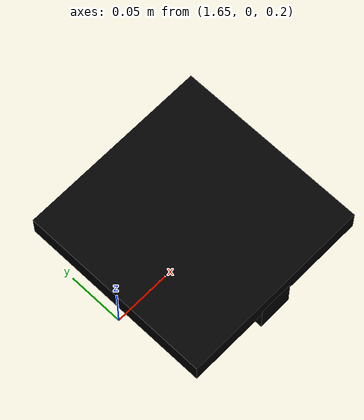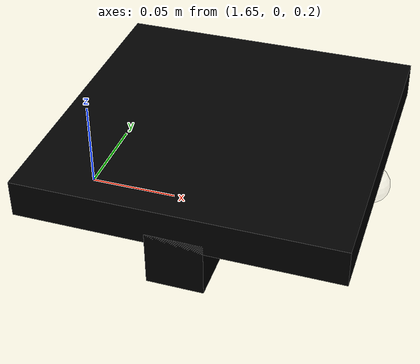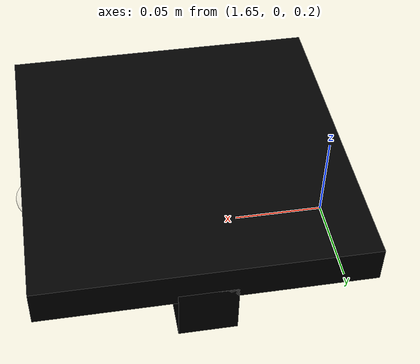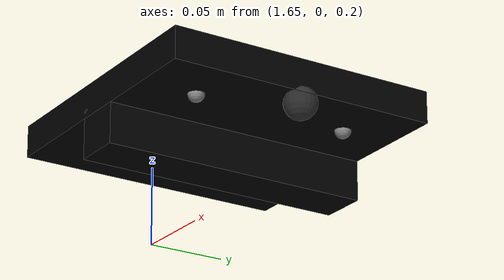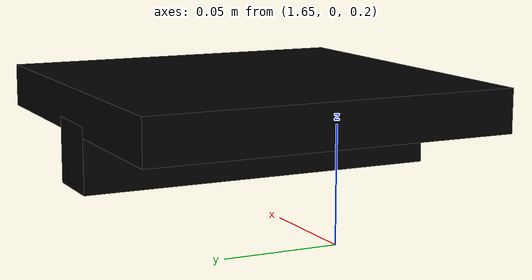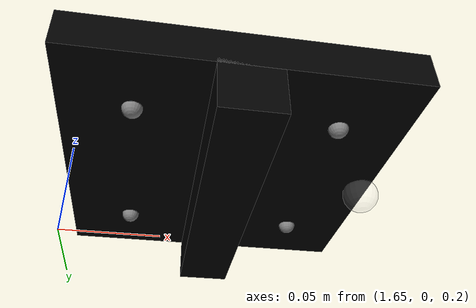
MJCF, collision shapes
<mujoco model="mini-drone-a-0">
  <!-- Compiler settings to automatically compute inertia from geometry and set mujoco_models directory -->
  <compiler inertiafromgeom="true" assetdir="../assets"/>

  <!-- Simulation options including timestep, gravity, solver iterations, integration method, air density, and air viscosity -->
  <option gravity="0 0 -9.81" iterations="50" integrator="Euler" density="1.225" viscosity="1.8e-5"/>

  <!-- Asset definitions for drone components -->
  <asset>
    <!-- Mesh for the drone body -->
    <mesh name="frame_0" file="frame.stl"/>
    <!-- Mesh for clockwise rotating propellers -->
    <mesh name="cwprop_0" file="cwprop.stl"/>
    <!-- Mesh for counter-clockwise rotating propellers -->
    <mesh name="ccwprop_0" file="ccwprop.stl"/>
  </asset>

  <!-- Default properties for joints, geometries, and motors -->
  <default>
    <!-- Joint properties: low damping to allow free rotation -->
    <joint damping="0.01"/>
    <!-- Geometric properties: friction, density, and collision margin -->
    <geom friction="1 0.5 0.5" density="1000" margin="0.01"/>
    <!-- Motor properties: control range -->
    <motor ctrlrange="0.0 1.0"/>
  </default>

  <worldbody>
    <body name="drone_0" pos="1.7320508075688774 0.0 .25">
      <!-- Free joint for models body to allow free movement in the environment -->
      <freejoint name="drone_0_free_joint"/>
      <inertial pos="0 0 0" mass="0.1"/>
      <site name="drone_0_sensor_site" pos="0 0 0"/>
      <geom name="drone_0_mesh" type="mesh" rgba="0.615686 0.811765 0.929412 1" mesh="frame_0" contype="0" conaffinity="0"/>

      <!-- Main collision box for the drone -->
      <geom name="drone_0_collision_1" type="box" size="0.085 0.085 0.01" rgba="0 0 0 0.2" contype="1" conaffinity="1"/>
      <!-- Additional collision box for the drone -->
      <geom name="drone_0_collision_2" type="box" pos="0 0 -0.02" size="0.015 0.085 0.015" rgba="0 0 0 0.2" contype="1" conaffinity="1"/>

      <!-- Propeller bodies and their visuals -->
      <!-- Clockwise rotating propellers -->
      <body name="front_right_prop_0" pos="0.05 -0.05 0">
        <inertial pos="0 0 -0.00580526" quat="0.5 0.5 -0.5 0.5" mass="0.01"/>
        <site name="front_right_prop_0" pos="0 0 -0.01"/>
        <joint name="front_right_prop_0" pos="0 0 0" axis="0 0 1" limited="false"/>
        <geom name="front_right_prop_0" pos="0 0 -0.005" type="mesh" rgba="0.615686 0.811765 0.929412 1" mesh="cwprop_0"/>
      </body>
      <body name="back_left_prop_0" pos="-0.05 0.05 0">
        <inertial pos="0 0 -0.00580526" quat="0.5 0.5 -0.5 0.5" mass="0.01"/>
        <site name="back_left_prop_0" pos="0 0 -0.01"/>
        <joint name="back_left_prop_0" pos="0 0 0" axis="0 0 1" limited="false"/>
        <geom name="back_left_front_0" pos="0 0 -0.005" type="mesh" rgba="0.615686 0.811765 0.929412 1" mesh="cwprop_0"/>
      </body>
      <!-- Counter-clockwise rotating propellers -->
      <body name="front_left_prop_0" pos="0.05 0.05 0">
        <inertial pos="0 0 -0.00580545" quat="0.5 0.5 -0.5 0.5" mass="0.01"/>
        <site name="front_left_prop_0" pos="0 0 -0.01"/>
        <joint name="front_left_prop_0" pos="0 0 0" axis="0 0 1" limited="false"/>
        <geom name="front_left_prop_0" pos="0 0 -0.005" type="mesh" rgba="0.615686 0.811765 0.929412 1" mesh="ccwprop_0"/>
      </body>
      <body name="back_right_prop_0" pos="-0.05 -0.05 0">
        <inertial pos="0 0 -0.00580545" quat="0.5 0.5 -0.5 0.5" mass="0.01"/>
        <site name="back_right_prop_0" pos="0 0 -0.01"/>
        <joint name="back_right_prop_0" pos="0 0 0" axis="0 0 1" limited="false"/>
        <geom name="back_right_prop_0" pos="0 0 -0.005" type="mesh" rgba="0.615686 0.811765 0.929412 1" mesh="ccwprop_0"/>
      </body>

      <site name="bullet_spawn_position_0" pos="0.08 0 -0.015" size="0.01" rgba="1 1 1 .2"/>

      <!-- Cameras (2 stereo, 1 normal) -->
      <camera name="camera0" pos="0.1 0 0" xyaxes="0 -1 0 0 0 1" fovy="60" mode="fixed"/>
      <camera name="camera0_left" pos="0.1 0.025 0" xyaxes="0 -1 0 0 0 1" fovy="60" mode="fixed"/>
      <camera name="camera0_right" pos="0.1 -0.025 0" xyaxes="0 -1 0 0 0 1" fovy="60" mode="fixed"/>
    </body>
    <body name="bullet_0" pos="0 0 0">
      <freejoint name="bullet_0"/>
      <geom name="bullet_0" type="sphere" size="0.01" rgba="0 0 0 0" contype="0" conaffinity="0"/>
    </body>
  </worldbody>

  <!-- Actuator definitions for controlling drone propellers -->
  <actuator>
    <motor name="front_left_0" site="front_left_prop_0" ctrllimited="true" ctrlrange="0.0 1.0" gear="0 0 10 0 0 1"/>
    <motor name="back_right_0" site="back_right_prop_0" ctrllimited="true" ctrlrange="0.0 1.0" gear="0 0 10 0 0 1"/>
    <motor name="front_right_0" site="front_right_prop_0" ctrllimited="true" ctrlrange="0.0 1.0" gear="0 0 10 0 0 -1"/>
    <motor name="back_left_0" site="back_left_prop_0" ctrllimited="true" ctrlrange="0.0 1.0" gear="0 0 10 0 0 -1"/>
  </actuator>

  <!-- Sensor definitions for the drone-->
  <sensor>
    <accelerometer name="accelerometer0" site="drone_0_sensor_site" noise="0.1" cutoff="10"/>
    <gyro name="gyro0" site="drone_0_sensor_site" noise="0.1" cutoff="10"/>
  </sensor>
</mujoco>
